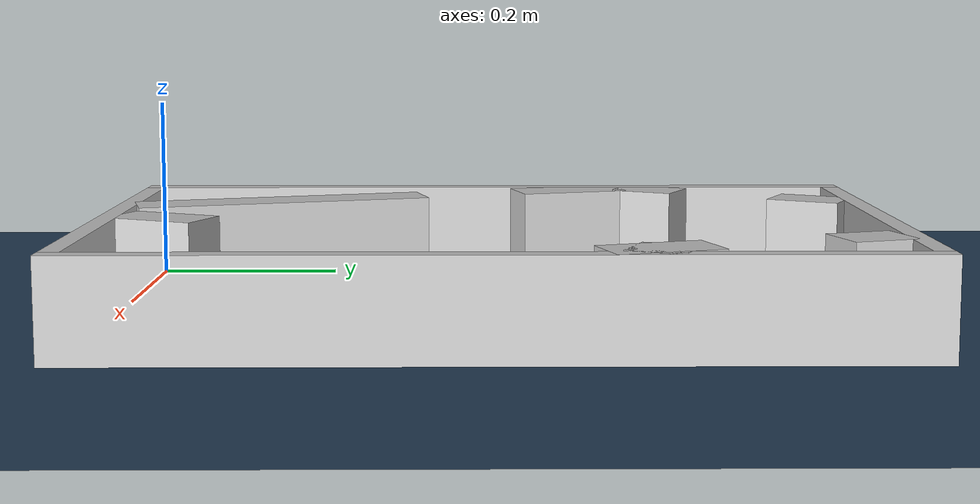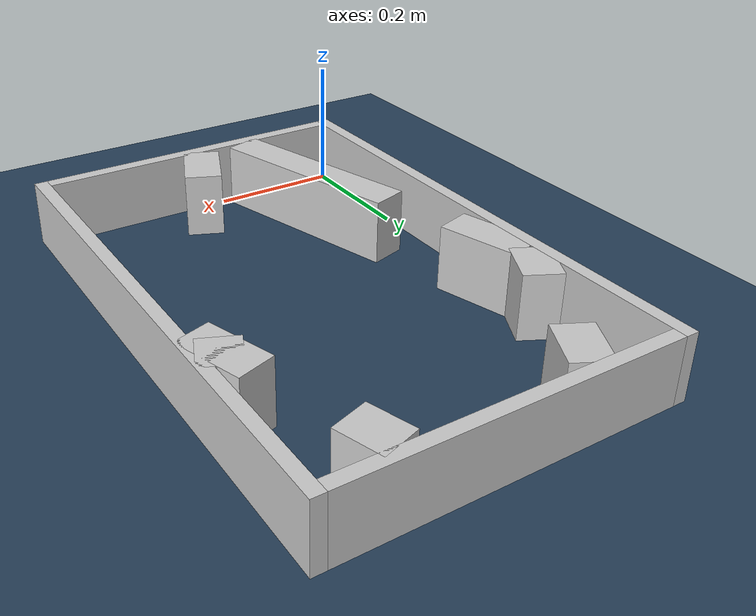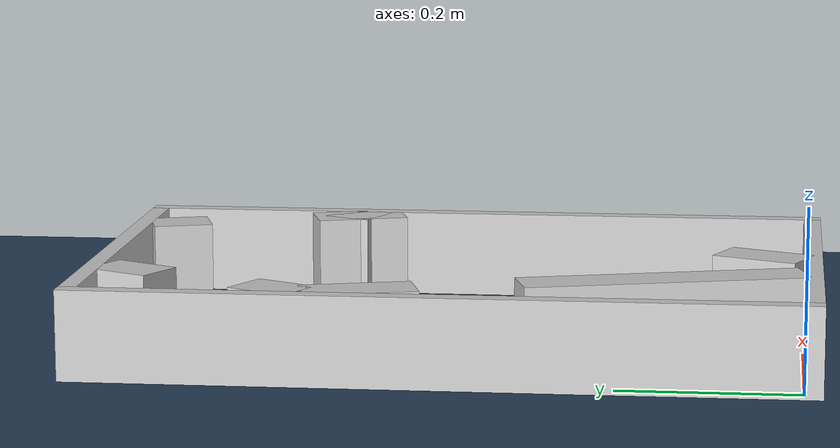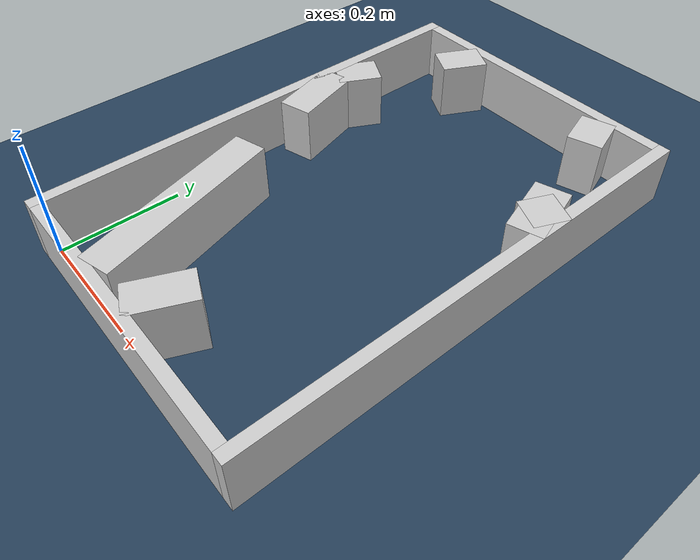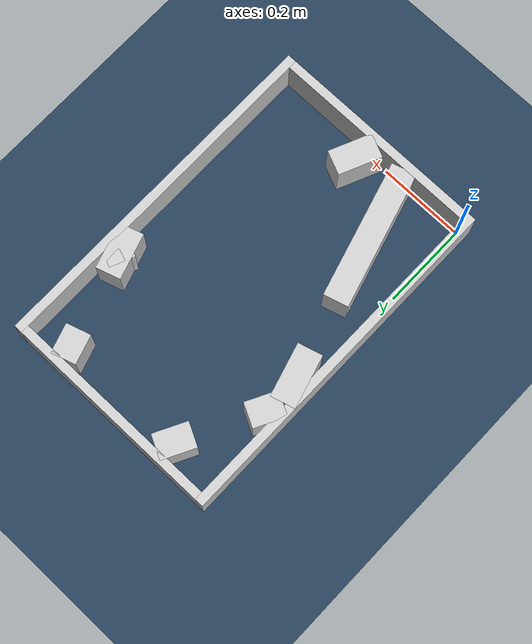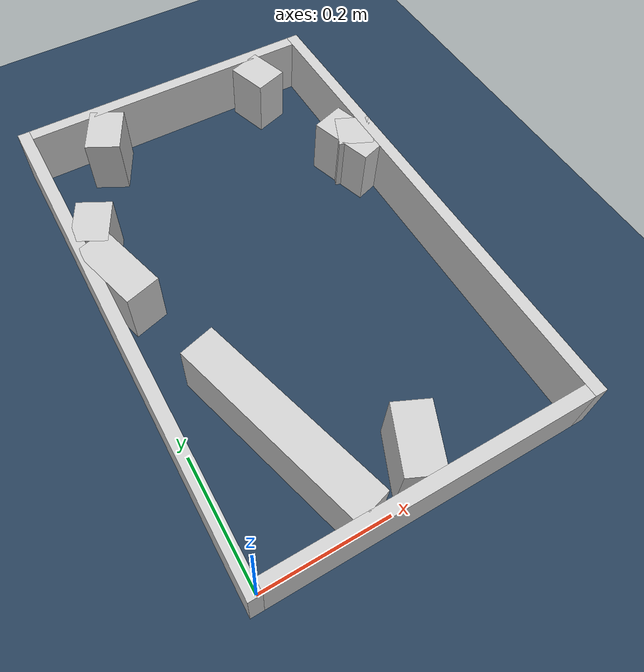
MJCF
<?xml version="1.0" ?>
<mujoco model="generated_real_template">
  <compiler angle="degree"/>
  <option timestep="0.002" integrator="implicitfast" iterations="100" cone="elliptic"/>
  <default>
    <geom density="1"/>
  </default>
  <asset>
    <texture builtin="gradient" height="3072" rgb1="0.3 0.5 0.7" rgb2="0 0 0" type="skybox" width="512"/>
    <texture builtin="checker" height="300" mark="edge" markrgb="0.8 0.8 0.8" name="groundplane" rgb1="0.2 0.3 0.4" rgb2="0.1 0.2 0.3" type="2d" width="300"/>
    <material name="groundplane" reflectance="0.2" texrepeat="5 5" texture="groundplane" texuniform="true"/>
  </asset>
  <worldbody>
    <light dir="0 0 -1" directional="true" pos="0 0 1.5"/>
    <geom name="floor" type="plane" condim="4" friction="0.5 0.005 0.001" material="groundplane" size="0 0 0.05"/>
    <body name="walls">
      <geom name="wall_boundary_left" type="box" condim="4" friction="1.0 0.005 0.0001" rgba="0.8 0.8 0.8 1" pos="-0.010000 0.387500 0.050000" euler="0 0 0.000000" size="0.010000 0.407500 0.050000"/>
      <geom name="wall_boundary_right" type="box" condim="4" friction="1.0 0.005 0.0001" rgba="0.8 0.8 0.8 1" pos="0.500000 0.387500 0.050000" euler="0 0 0.000000" size="0.010000 0.407500 0.050000"/>
      <geom name="wall_boundary_bottom" type="box" condim="4" friction="1.0 0.005 0.0001" rgba="0.8 0.8 0.8 1" pos="0.245000 -0.010000 0.050000" euler="0 0 0.000000" size="0.245000 0.010000 0.050000"/>
      <geom name="wall_boundary_top" type="box" condim="4" friction="1.0 0.005 0.0001" rgba="0.8 0.8 0.8 1" pos="0.245000 0.785000 0.050000" euler="0 0 0.000000" size="0.245000 0.010000 0.050000"/>
      <geom name="wall_inner_1_1" type="box" condim="4" friction="1.0 0.005 0.0001" rgba="0.8 0.8 0.8 1" pos="0.116841 0.153291 0.050000" euler="0 0 106.026604" size="0.159490 0.028500 0.050000"/>
      <geom name="wall_inner_1_2" type="box" condim="4" friction="1.0 0.005 0.0001" rgba="0.8 0.8 0.8 1" pos="0.024431 0.474998 0.050000" euler="0 0 106.026604" size="0.061713 0.028500 0.050000"/>
      <geom name="wall_inner_2_1" type="box" condim="4" friction="1.0 0.005 0.0001" rgba="0.8 0.8 0.8 1" pos="0.257663 0.046203 0.050000" euler="0 0 66.383078" size="0.050426 0.028500 0.050000"/>
      <geom name="wall_inner_2_2" type="box" condim="4" friction="1.0 0.005 0.0001" rgba="0.8 0.8 0.8 1" pos="0.472146 0.536741 0.050000" euler="0 0 66.383078" size="0.029304 0.028500 0.050000"/>
      <geom name="wall_inner_3_1" type="box" condim="4" friction="1.0 0.005 0.0001" rgba="0.8 0.8 0.8 1" pos="0.466636 0.535053 0.050000" euler="0 0 107.624795" size="0.053505 0.028500 0.050000"/>
      <geom name="wall_inner_3_2" type="box" condim="4" friction="1.0 0.005 0.0001" rgba="0.8 0.8 0.8 1" pos="0.400813 0.742244 0.050000" euler="0 0 107.624795" size="0.034369 0.028500 0.050000"/>
      <geom name="wall_inner_4_1" type="box" condim="4" friction="1.0 0.005 0.0001" rgba="0.8 0.8 0.8 1" pos="0.110997 0.739387 0.050000" euler="0 0 -117.313370" size="0.040081 0.028500 0.050000"/>
      <geom name="wall_inner_4_2" type="box" condim="4" friction="1.0 0.005 0.0001" rgba="0.8 0.8 0.8 1" pos="0.022485 0.567996 0.050000" euler="0 0 -117.313370" size="0.037400 0.028500 0.050000"/>
    </body>
  </worldbody>
</mujoco>
